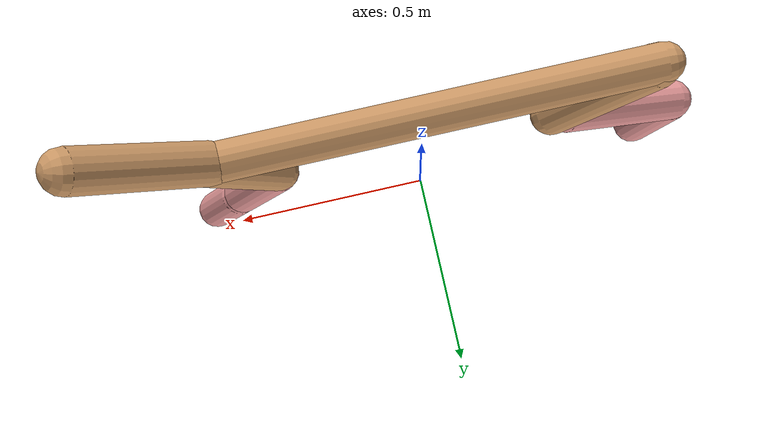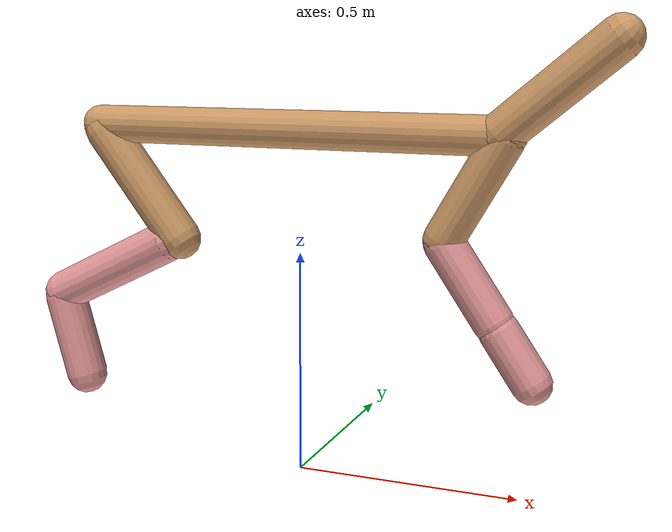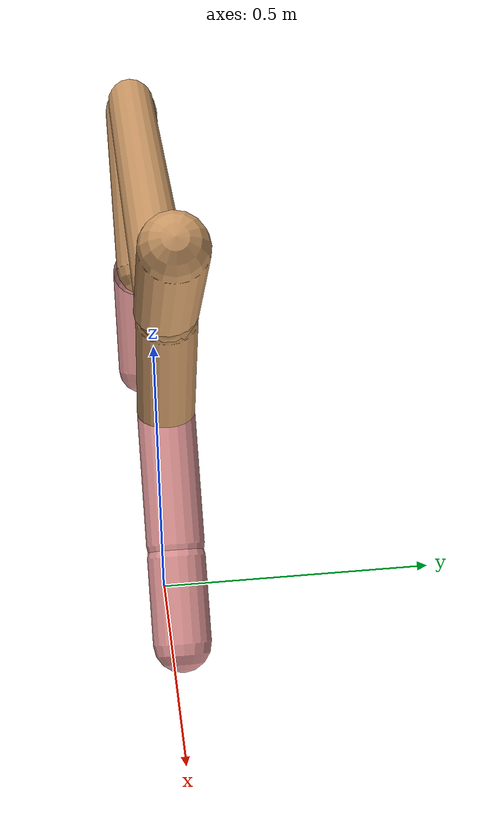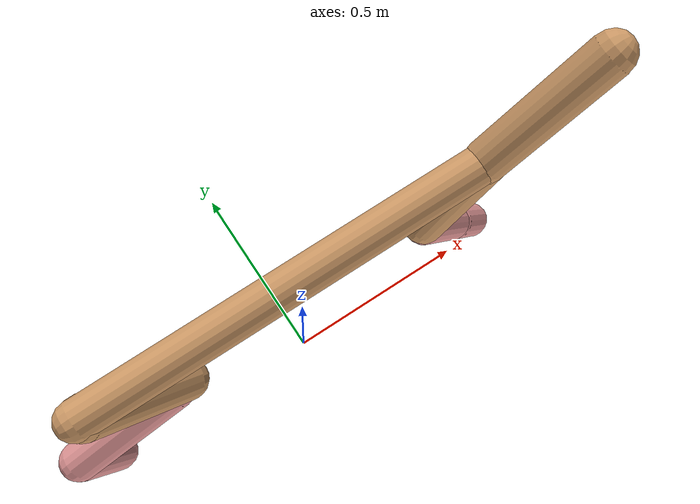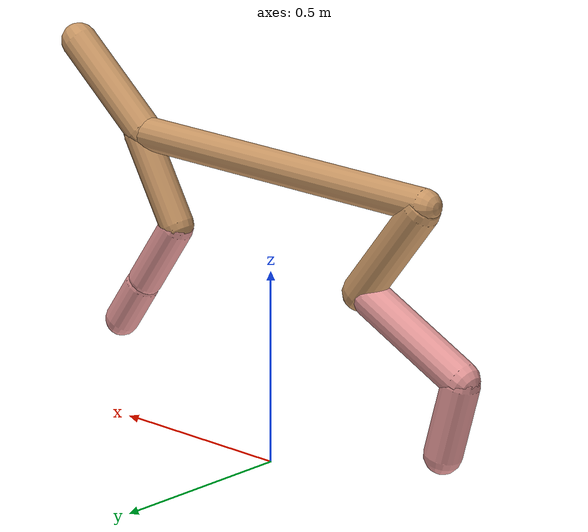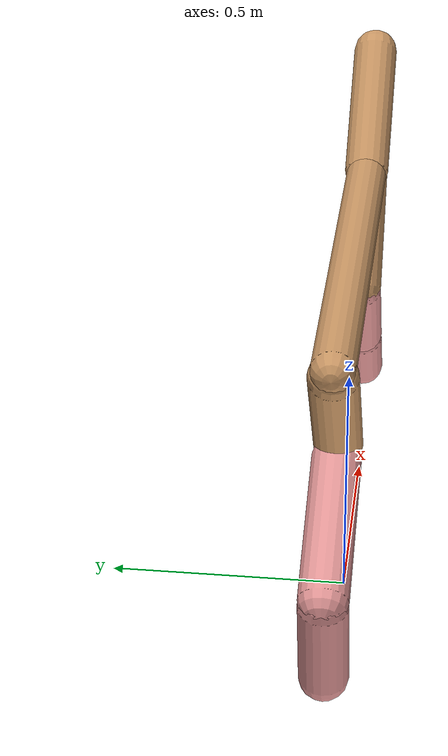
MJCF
<mujoco model="cheetah">
  <compiler angle="radian" coordinate="local" inertiafromgeom="true" settotalmass="14" />
  <default>
    <joint armature=".1" damping=".01" limited="true" solimplimit="0 .8 .03" solreflimit=".02 1" stiffness="8" />
    <geom conaffinity="0" condim="3" contype="1" friction="0.8 .1 .1" rgba="0.8 0.6 .4 1" solimp="0.0 0.8 0.01" solref="0.02 1" />
    <motor ctrllimited="true" ctrlrange="-1 1" />
  </default>
  <size nstack="300000" nuser_geom="1" />
  <option gravity="0 0 -9.81" timestep="0.01" />
  <worldbody>
    <body name="torso" pos="0.0 0.0 0.7722433837904569">
      <joint armature="0" axis="1 0 0" damping="0" limited="false" name="ignorex" pos="0 0 0" stiffness="0" type="slide" />
      <joint armature="0" axis="0 0 1" damping="0" limited="false" name="ignorez" pos="0 0 0" stiffness="0" type="slide" />
      <joint armature="0" axis="0 1 0" damping="0" limited="false" name="ignorey" pos="0 0 0" stiffness="0" type="hinge" />
      <geom fromto="-0.5 0.0 0.0 0.451411783521374 0.0 0.0" name="torso" size="0.04240973321339401" type="capsule" />
      <geom axisangle="0 1 0 .87" name="head" pos="0.551411783521374 0.0 0.1" size="0.04633530477335432 0.15" type="capsule" />

      <body name="bthigh" pos="-.5 0 0">
        <joint axis="0 1 0" damping="6" name="bthigh" pos="0 0 0" range="-.52 1.05" stiffness="240" type="hinge" />
        <geom axisangle="0 1 0 -3.8" name="bthigh" pos="0.10541262494245694 0.0 -0.13703641242519402" size="0.04813533712905259 0.1538773649573019" type="capsule" />
        <body name="bshin" pos="0.17082524988491388 0.0 -0.264072824850388">
          <joint axis="0 1 0" damping="4.5" name="bshin" pos="0 0 0" range="-.785 .785" stiffness="180" type="hinge" />
          <geom axisangle="0 1 0 -2.03" name="bshin" pos="-0.14821395510576618 0.0 -0.07410697755288309" rgba="0.9 0.6 0.6 1" size="0.04813533712905259 0.15918348099031232" type="capsule" />
          <body name="bfoot" pos="-0.29642791021153236 0.0 -0.14821395510576618">
            <joint axis="0 1 0" damping="3" name="bfoot" pos="0 0 0" range="-.4 .785" stiffness="120" type="hinge" />
            <geom axisangle="0 1 0 -.27" name="bfoot" pos="0.03170042276576506 0.0 -0.10249803360930704" rgba="0.9 0.6 0.6 1" size="0.04813533712905259 0.09975498142059572" type="capsule" />
            <inertial mass="10" />
          </body>
        </body>
      </body>
      <body name="fthigh" pos="0.451411783521374 0.0 0.0">
        <joint axis="0 1 0" damping="4.5" name="fthigh" pos="0 0 0" range="-1.5 0.8" stiffness="180" type="hinge" />
        <geom axisangle="0 1 0 .52" name="fthigh" pos="-0.0653721462097915 0.0 -0.11206653635964255" size="0.04413481114491397 0.12381540006116648" type="capsule" />
        <body name="fshin" pos="-0.130744292419583 0.0 -0.2241330727192851">
          <joint axis="0 1 0" damping="3" name="fshin" pos="0 0 0" range="-1.2 1.1" stiffness="120" type="hinge" />
          <geom axisangle="0 1 0 -.6" name="fshin" pos="0.06071417571779843 0.0 -0.08406578176310552" rgba="0.9 0.6 0.6 1" size="0.04413481114491397 0.09867994290589208" type="capsule" />
          <body name="ffoot" pos="0.12142835143559685 0.0 -0.16813156352621103">
            <joint axis="0 1 0" damping="1.5" name="ffoot" pos="0 0 0" range="-3.1 -0.3" stiffness="60" type="hinge" />
            <geom axisangle="0 1 0 -.6" name="ffoot" pos="0.04238597782099909 0.0 -0.0659337432771097" rgba="0.9 0.6 0.6 1" size="0.04413481114491397 0.06516600003219289" type="capsule" />
            <inertial mass="10" />
          </body>
        </body>
      </body>
    </body>
  </worldbody>
  <actuator>
    <motor gear="120" joint="bthigh" name="bthigh" />
    <motor gear="90" joint="bshin" name="bshin" />
    <motor gear="60" joint="bfoot" name="bfoot" />
    <motor gear="120" joint="fthigh" name="fthigh" />
    <motor gear="60" joint="fshin" name="fshin" />
    <motor gear="30" joint="ffoot" name="ffoot" />
  </actuator>
</mujoco>
